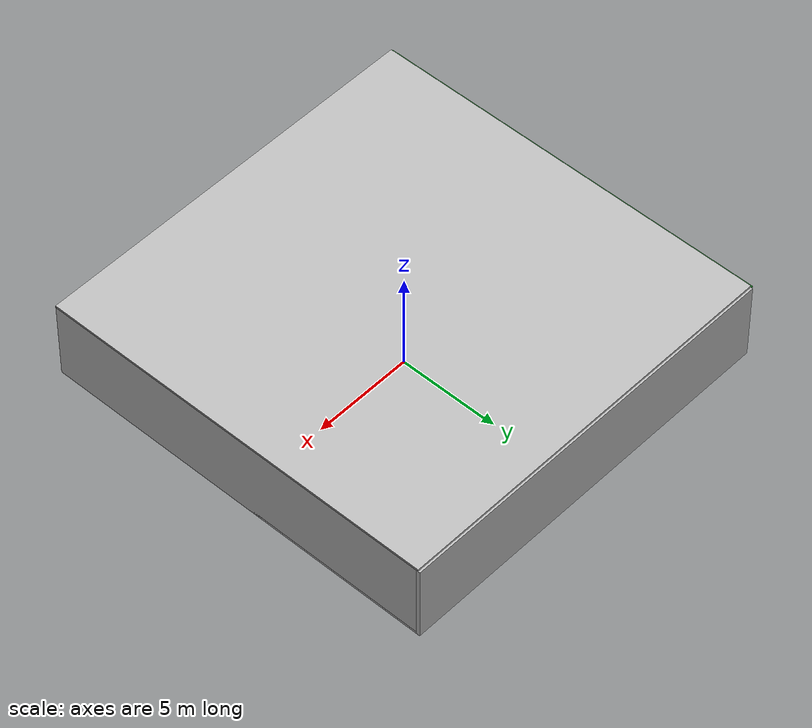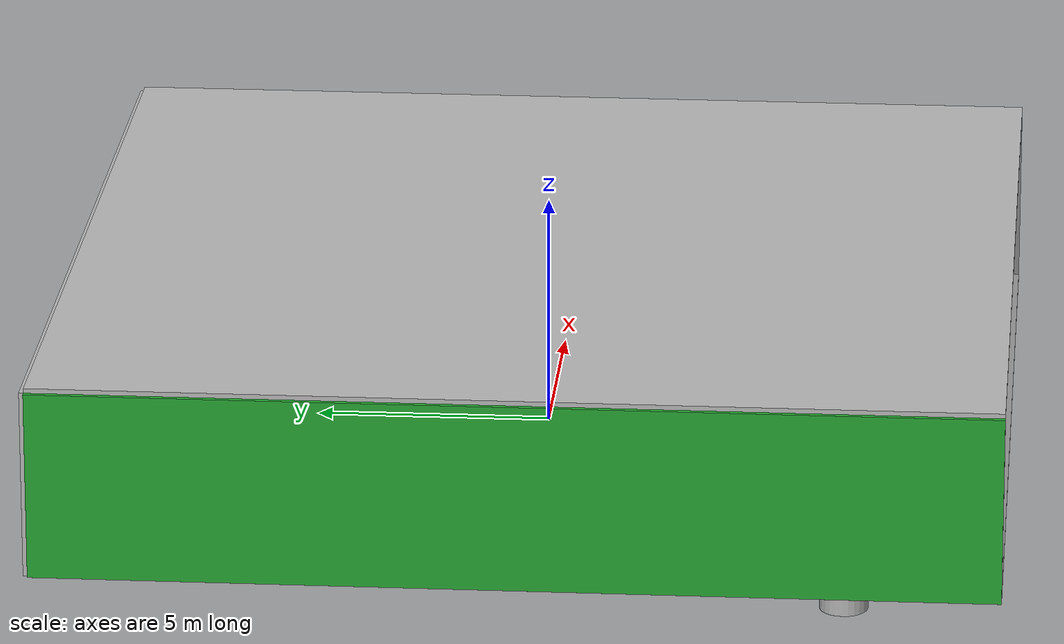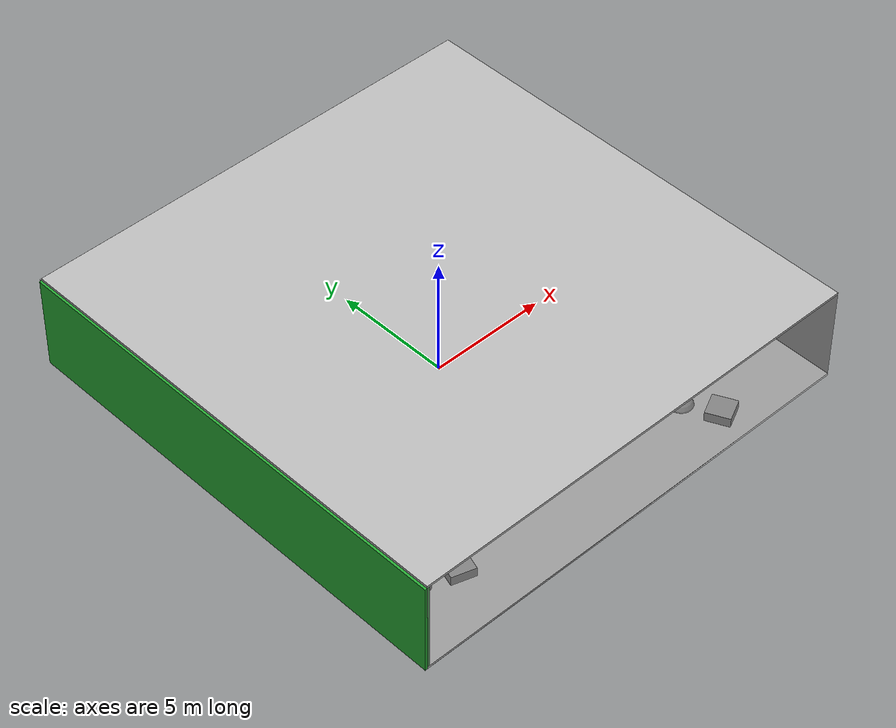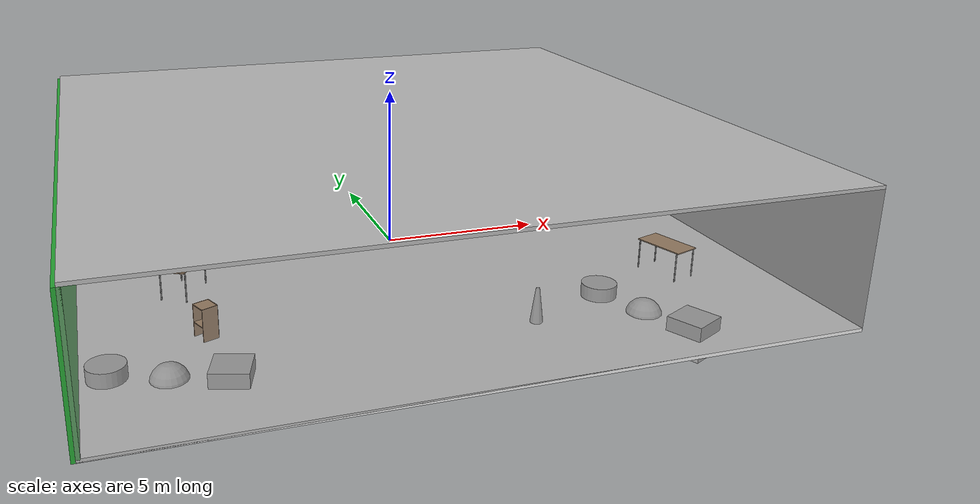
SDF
<sdf version="1.4">
 <world name="default">
  <physics type="ode">
   <max_step_size>0.001</max_step_size>
   <real_time_factor>1</real_time_factor>
   <real_time_update_rate>1000</real_time_update_rate>
   <gravity>0 0 -9.8</gravity>
  </physics>
  <scene><ambient>0.4 0.4 0.4 1</ambient><background>0.7 0.7 0.7 1</background><shadows>1</shadows></scene>
  <model name="Surrounding">
   <static>1</static>
   <link name="Ceiling">
    <collision name="Ceiling_Collision"><geometry><box><size>20 20 0.1</size></box></geometry></collision>
    <visual name="Ceiling_Visual">
     <geometry><box><size>20 20 0.1</size></box></geometry>
     <material>
      <script><uri>file://media/materials/scripts/gazebo.material</uri><name>Gazebo/CloudySky</name></script>
     </material>
    </visual>
    <pose>0 0 4.05 0 0 0</pose>
   </link>
   <link name="Wall_South">
    <collision name="Wall_South_Collision">
     <geometry><box><size>20 0 4</size></box></geometry>
     <pose>0 0 2 0 -0 0</pose>
    </collision>
    <visual name="Wall_South_Visual">
     <pose>0 0 2 0 -0 0</pose>
     <geometry><box><size>20 0 4</size></box></geometry>
     <material>
      <script><uri>file://media/materials/scripts/gazebo.material</uri><name>Gazebo/GreyTransparent</name></script>
     </material>
    </visual>
    <velocity_decay><linear>0</linear><angular>0</angular></velocity_decay>
    <pose>0 -10 0 0 -0 0</pose>
   </link>
   <link name="Wall_East">
    <collision name="Wall_21_Collision">
     <geometry><box><size>20 0 4</size></box></geometry>
     <pose>0 0 2 0 -0 0</pose>
    </collision>
    <visual name="Wall_21_Visual">
     <pose>0 0 2 0 -0 0</pose>
     <geometry><box><size>20 0 4</size></box></geometry>
     <material>
      <script><uri>file://media/materials/scripts/gazebo.material</uri><name>Gazebo/LightOn</name></script>
     </material>
    </visual>
    <velocity_decay><linear>0</linear><angular>0</angular></velocity_decay>
    <pose>10 0 0 0 -0 1.5708</pose>
   </link>
   <link name="Wall_North">
    <collision name="Wall_22_Collision">
     <geometry><box><size>20 0.2 4</size></box></geometry>
     <pose>0 0 2 0 -0 0</pose>
    </collision>
    <visual name="Wall_22_Visual">
     <pose>0 0 2 0 -0 0</pose>
     <geometry><box><size>20 0.2 4</size></box></geometry>
     <material>
      <script><uri>file://media/materials/scripts/gazebo.material</uri><name>Gazebo/CloudySky</name></script>
     </material>
    </visual>
    <velocity_decay><linear>0</linear><angular>0</angular></velocity_decay>
    <pose>0 10 0 0 -0 0</pose>
   </link>
   <link name="Wall_West">
    <collision name="Wall_23_Collision">
     <geometry><box><size>20 0.2 4</size></box></geometry>
     <pose>0 0 2 0 -0 0</pose>
    </collision>
    <visual name="Wall_23_Visual">
     <pose>0 0 2 0 -0 0</pose>
     <geometry><box><size>20 0.2 4</size></box></geometry>
     <material>
      <script><uri>file://media/materials/scripts/gazebo.material</uri><name>Gazebo/Green</name></script>
     </material>
    </visual>
    <velocity_decay><linear>0</linear><angular>0</angular></velocity_decay>
    <pose>-10 0 0 0 0 -1.5708</pose>
   </link>
   <link name="Ground_link">
    <collision name="collision">
     <pose>0 0 .05 0 -0 0</pose>
     <geometry><box><size>20 20 0.1</size></box></geometry>
    </collision>
    <visual name="visual">
     <pose>0 0 .05 0 -0 0</pose>
     <geometry><box><size>20 20 0.1</size></box></geometry>
     <material>
      <script><uri>file://media/materials/scripts/gazebo.material</uri><name>Gazebo/WhiteGlow</name></script>
     </material>
    </visual>
   </link>
   <static>1</static>
  </model>
  <spherical_coordinates>
   <surface_model>EARTH_WGS84</surface_model>
   <latitude_deg>0</latitude_deg>
   <longitude_deg>0</longitude_deg>
   <elevation>0</elevation>
   <heading_deg>0</heading_deg>
  </spherical_coordinates>
  <light name="lightball_0" type="diffuse">
   <diffuse>0.8 0.8 0.8 1</diffuse>
   <specular>0.2 0.2 0.2 1</specular>
   <attenuation>
    <range>100</range>
    <constant>0.7</constant>
    <linear>0.01</linear>
    <quadratic>0.001</quadratic>
   </attenuation>
   <direction>-0.5 0.1 -0.9</direction>
   <pose>-4.15965389641 4.90394560641 3.1713730836 0 0 0</pose>
  </light>
  <light name="lightball_1" type="diffuse">
   <diffuse>0.8 0.8 0.8 1</diffuse>
   <specular>0.2 0.2 0.2 1</specular>
   <attenuation>
    <range>100</range>
    <constant>0.7</constant>
    <linear>0.01</linear>
    <quadratic>0.001</quadratic>
   </attenuation>
   <direction>-0.5 0.1 -0.9</direction>
   <pose>8.76057171822 -4.93679237394 0.556868169343 0 0 0</pose>
  </light>
  <light name="lightball_2" type="diffuse">
   <diffuse>0.8 0.8 0.8 1</diffuse>
   <specular>0.2 0.2 0.2 1</specular>
   <attenuation>
    <range>100</range>
    <constant>0.7</constant>
    <linear>0.01</linear>
    <quadratic>0.001</quadratic>
   </attenuation>
   <direction>-0.5 0.1 -0.9</direction>
   <pose>-6.00539818969 -0.36622321256 1.60078208445 0 0 0</pose>
  </light>
  <light name="lightball_3" type="diffuse">
   <diffuse>0.8 0.8 0.8 1</diffuse>
   <specular>0.2 0.2 0.2 1</specular>
   <attenuation>
    <range>100</range>
    <constant>0.7</constant>
    <linear>0.01</linear>
    <quadratic>0.001</quadratic>
   </attenuation>
   <direction>-0.5 0.1 -0.9</direction>
   <pose>9.28358902022 1.38269042491 0.984872117647 0 0 0</pose>
  </light>
  <light name="lightball_4" type="diffuse">
   <diffuse>0.8 0.8 0.8 1</diffuse>
   <specular>0.2 0.2 0.2 1</specular>
   <attenuation>
    <range>100</range>
    <constant>0.7</constant>
    <linear>0.01</linear>
    <quadratic>0.001</quadratic>
   </attenuation>
   <direction>-0.5 0.1 -0.9</direction>
   <pose>-5.01966783109 1.87357943119 0.952028916048 0 0 0</pose>
  </light>
  <light name="lightball_5" type="diffuse">
   <diffuse>0.8 0.8 0.8 1</diffuse>
   <specular>0.2 0.2 0.2 1</specular>
   <attenuation>
    <range>100</range>
    <constant>0.7</constant>
    <linear>0.01</linear>
    <quadratic>0.001</quadratic>
   </attenuation>
   <direction>-0.5 0.1 -0.9</direction>
   <pose>-7.50471697387 3.6685114202 3.13317538407 0 0 0</pose>
  </light>
  <include>
   <uri>model://textured_shapes</uri>
   <pose>-7.8094748655 -7.19579209764 0 0 0 1.27442405172</pose>
  </include>
  <include><uri>model://cabinet</uri><pose>-6.67894932946 -5.28611733448 0 0 0 0.397450792426</pose></include>
  <include><uri>model://table</uri><pose>-6.93214983827 -2.24933840748 0 0 0 1.04418493623</pose></include>
  <include>
   <uri>model://robocup_3Dsim_goal</uri>
   <pose>-4.97766620101 1.22511451994 0 0 0 0.845265833645</pose>
  </include>
  <include><uri>model://table</uri><pose>-0.970947940107 1.86597177845 0 0 0 2.95307967306</pose></include>
  <include>
   <uri>model://textured_shapes</uri>
   <pose>-1.5543253673 5.64765196087 0 0 0 2.60027594186</pose>
  </include>
  <include>
   <uri>model://construction_cone</uri>
   <pose>1.90911713579 -7.03968266761 0 0 0 1.09564736254</pose>
  </include>
  <include>
   <uri>model://textured_shapes</uri>
   <pose>4.9784648139 -7.40052625314 0 0 0 0.451930403073</pose>
  </include>
  <include><uri>model://table</uri><pose>7.06884557382 -5.11988627178 0 0 0 1.88602784274</pose></include>
  <include>
   <uri>model://robocup_3Dsim_goal</uri>
   <pose>7.31791706066 3.39414340413 0 0 0 1.80906214731</pose>
  </include>
 </world>
</sdf>

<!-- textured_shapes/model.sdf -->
<sdf version="1.6">
  <model name="textured_shapes">
    <pose>0 0 0.5 0 0 0</pose>
    <link name="box">
      <pose>0 -1.5 0 0 0 0</pose>
      <collision name="collision">
        <geometry>
          <box>
            <size>1 1 1</size>
          </box>
        </geometry>
      </collision>
      <visual name="visual">
        <geometry>
          <box>
            <size>1 1 1</size>
          </box>
        </geometry>
        <material>
          <script>
            <uri>model://../model_source/models/textured_shapes/materials/scripts</uri>
            <uri>model://../model_source/models/textured_shapes/materials/textures</uri>
            <name>TexturedShape/Squares</name>
          </script>
        </material>
      </visual>
    </link>
    <link name="sphere">
      <collision name="collision">
        <geometry>
          <sphere>
            <radius>0.5</radius>
          </sphere>
        </geometry>
      </collision>
      <visual name="visual">
        <geometry>
          <sphere>
            <radius>0.5</radius>
          </sphere>
        </geometry>
        <material>
          <script>
            <uri>model://../model_source/models/textured_shapes/materials/scripts</uri>
            <uri>model://../model_source/models/textured_shapes/materials/textures</uri>
            <name>TexturedShape/Squares</name>
          </script>
        </material>
      </visual>
    </link>
    <link name="cylinder">
      <pose>0 1.5 0 0 0 0</pose>
      <collision name="collision">
        <geometry>
          <cylinder>
            <radius>0.5</radius>
            <length>1</length>
          </cylinder>
        </geometry>
      </collision>
      <visual name="visual">
        <geometry>
          <cylinder>
            <radius>0.5</radius>
            <length>1</length>
          </cylinder>
        </geometry>
        <material>
          <script>
            <uri>model://../model_source/models/textured_shapes/materials/scripts</uri>
            <uri>model://../model_source/models/textured_shapes/materials/textures</uri>
            <name>TexturedShape/Squares</name>
          </script>
        </material>
      </visual>
    </link>
  </model>
</sdf>

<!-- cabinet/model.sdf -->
<sdf version="1.5">
  <model name="cabinet">
    <static>true</static>
    <link name="cabinet_bottom_plate">
      <inertial>
        <pose>0 0 -1 0 0 0</pose>
        <inertia>
          <ixx>2.050000</ixx>
          <ixy>0</ixy>
          <ixz>0</ixz>
          <iyy>2.050000</iyy>
          <iyz>0</iyz>
          <izz>2.050000</izz>
        </inertia>
        <mass>25.000000</mass>
      </inertial>
      <collision name="cabinet_bottom_plate_geom">
        <pose>0 0 0.010000 0 0 0</pose>
        <geometry>
          <box>
            <size>0.450000 0.450000 0.020000</size>
          </box>
        </geometry>
      </collision>
      <visual name="cabinet_bottom_plate_geom_visual">
        <pose>0 0 0.010000 0 0 0</pose>
        <geometry>
          <box>
            <size>0.450000 0.450000 0.020000</size>
          </box>
        </geometry>
        <material>
          <script>
            <uri>model://media/materials/scripts/gazebo.material</uri>
            <name>Gazebo/Wood</name>
          </script>
        </material>
      </visual>
      <collision name="cabinet_bottom_plate_geom_cabinet_back_plate">
        <pose>0.235000 0 0.510000 0 0 0</pose>
        <geometry>
          <box>
            <size>0.020000 0.450000 1.020000</size>
          </box>
        </geometry>
      </collision>
      <visual name="cabinet_bottom_plate_geom_cabinet_back_plate_visual">
        <pose>0.235000 0 0.510000 0 0 0</pose>
        <geometry>
          <box>
            <size>0.020000 0.450000 1.020000</size>
          </box>
        </geometry>
        <material>
          <script>
            <uri>model://media/materials/scripts/gazebo.material</uri>
            <name>Gazebo/Wood</name>
          </script>
        </material>
      </visual>
      <collision name="cabinet_bottom_plate_geom_cabinet_left_plate">
        <pose>0 0.235000 0.510000 0 0 0</pose>
        <geometry>
          <box>
            <size>0.450000 0.020000 1.020000</size>
          </box>
        </geometry>
      </collision>
      <visual name="cabinet_bottom_plate_geom_cabinet_left_plate_visual">
        <pose>0 0.235000 0.510000 0 0 0</pose>
        <geometry>
          <box>
            <size>0.450000 0.020000 1.020000</size>
          </box>
        </geometry>
        <material>
          <script>
            <uri>model://media/materials/scripts/gazebo.material</uri>
            <name>Gazebo/Wood</name>
          </script>
        </material>
      </visual>
      <collision name="cabinet_bottom_plate_geom_cabinet_middle_plate">
        <pose>0 0 0.510000 0 0 0</pose>
        <geometry>
          <box>
            <size>0.450000 0.450000 0.020000</size>
          </box>
        </geometry>
      </collision>
      <visual name="cabinet_bottom_plate_geom_cabinet_middle_plate_visual">
        <pose>0 0 0.510000 0 0 0</pose>
        <geometry>
          <box>
            <size>0.450000 0.450000 0.020000</size>
          </box>
        </geometry>
        <material>
          <script>
            <uri>model://media/materials/scripts/gazebo.material</uri>
            <name>Gazebo/Wood</name>
          </script>
        </material>
      </visual>
      <collision name="cabinet_bottom_plate_geom_cabinet_right_plate">
        <pose>0 -0.235000 0.510000 0 0 0</pose>
        <geometry>
          <box>
            <size>0.450000 0.020000 1.020000</size>
          </box>
        </geometry>
      </collision>
      <visual name="cabinet_bottom_plate_geom_cabinet_right_plate_visual">
        <pose>0 -0.235000 0.510000 0 0 0</pose>
        <geometry>
          <box>
            <size>0.450000 0.020000 1.020000</size>
          </box>
        </geometry>
        <material>
          <script>
            <uri>model://media/materials/scripts/gazebo.material</uri>
            <name>Gazebo/Wood</name>
          </script>
        </material>
      </visual>
      <collision name="cabinet_bottom_plate_geom_cabinet_top_plate">
        <pose>0 0 1.010000 0 0 0</pose>
        <geometry>
          <box>
            <size>0.450000 0.450000 0.020000</size>
          </box>
        </geometry>
      </collision>
      <visual name="cabinet_bottom_plate_geom_cabinet_top_plate_visual">
        <pose>0 0 1.010000 0 0 0</pose>
        <geometry>
          <box>
            <size>0.450000 0.450000 0.020000</size>
          </box>
        </geometry>
        <material>
          <script>
            <uri>model://media/materials/scripts/gazebo.material</uri>
            <name>Gazebo/Wood</name>
          </script>
        </material>
      </visual>
    </link>
  </model>
</sdf>

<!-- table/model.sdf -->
<sdf version="1.5">
  <model name="table">
    <static>true</static>
    <link name="link">
      <collision name="surface">
        <pose>0 0 1.0 0 0 0</pose>
        <geometry>
          <box>
            <size>1.5 0.8 0.03</size>
          </box>
        </geometry>
        <surface>
          <friction>
            <ode>
              <mu>0.6</mu>
              <mu2>0.6</mu2>
            </ode>
          </friction>
        </surface>
      </collision>
      <visual name="visual1">
        <pose>0 0 1.0 0 0 0</pose>
        <geometry>
          <box>
            <size>1.5 0.8 0.03</size>
          </box>
        </geometry>
        <material>
          <script>
            <uri>model://media/materials/scripts/gazebo.material</uri>
            <name>Gazebo/Wood</name>
          </script>
        </material>
      </visual>
      <collision name="front_left_leg">
        <pose>0.68 0.38 0.5 0 0 0</pose>
        <geometry>
          <cylinder>
            <radius>0.02</radius>
            <length>1.0</length>
          </cylinder>
        </geometry>
      </collision>
      <visual name="front_left_leg">
        <pose>0.68 0.38 0.5 0 0 0</pose>
        <geometry>
          <cylinder>
            <radius>0.02</radius>
            <length>1.0</length>
          </cylinder>
        </geometry>
        <material>
          <script>
            <uri>model://media/materials/scripts/gazebo.material</uri>
            <name>Gazebo/Grey</name>
          </script>
        </material>
      </visual>
      <collision name="front_right_leg">
        <pose>0.68 -0.38 0.5 0 0 0</pose>
        <geometry>
          <cylinder>
            <radius>0.02</radius>
            <length>1.0</length>
          </cylinder>
        </geometry>
      </collision>
      <visual name="front_right_leg">
        <pose>0.68 -0.38 0.5 0 0 0</pose>
        <geometry>
          <cylinder>
            <radius>0.02</radius>
            <length>1.0</length>
          </cylinder>
        </geometry>
        <material>
          <script>
            <uri>model://media/materials/scripts/gazebo.material</uri>
            <name>Gazebo/Grey</name>
          </script>
        </material>
      </visual>
      <collision name="back_right_leg">
        <pose>-0.68 -0.38 0.5 0 0 0</pose>
        <geometry>
          <cylinder>
            <radius>0.02</radius>
            <length>1.0</length>
          </cylinder>
        </geometry>
      </collision>
      <visual name="back_right_leg">
        <pose>-0.68 -0.38 0.5 0 0 0</pose>
        <geometry>
          <cylinder>
            <radius>0.02</radius>
            <length>1.0</length>
          </cylinder>
        </geometry>
        <material>
          <script>
            <uri>model://media/materials/scripts/gazebo.material</uri>
            <name>Gazebo/Grey</name>
          </script>
        </material>
      </visual>
      <collision name="back_left_leg">
        <pose>-0.68 0.38 0.5 0 0 0</pose>
        <geometry>
          <cylinder>
            <radius>0.02</radius>
            <length>1.0</length>
          </cylinder>
        </geometry>
      </collision>
      <visual name="back_left_leg">
        <pose>-0.68 0.38 0.5 0 0 0</pose>
        <geometry>
          <cylinder>
            <radius>0.02</radius>
            <length>1.0</length>
          </cylinder>
        </geometry>
        <material>
          <script>
            <uri>model://media/materials/scripts/gazebo.material</uri>
            <name>Gazebo/Grey</name>
          </script>
        </material>
      </visual>
    </link>
  </model>
</sdf>

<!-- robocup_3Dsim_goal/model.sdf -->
<sdf version="1.5">
  <model name="robocup_3d_goal">
    <static>true</static>
    <link name="left_post">
      <pose>0 1.05 0.45 0 0 0</pose>
      <collision name="collision">
        <geometry>
          <cylinder>
            <radius>0.05</radius>
            <length>0.9</length>
          </cylinder>
        </geometry>
      </collision>
      <visual name="visual">
        <geometry>
          <cylinder>
            <radius>0.05</radius>
            <length>0.9</length>
          </cylinder>
        </geometry>
        <material>
          <script>
            <uri>file://media/materials/scripts/gazebo.material</uri>
            <name>Gazebo/ZincYellow</name>
          </script>
        </material>
      </visual>
    </link>
    <link name="left_support_horiz_lower">
      <pose>0.30 1.05 0.01 0 0 0</pose>
      <collision name="collision">
        <geometry>
          <box>
            <size>0.50 0.02 0.02</size>
          </box>
        </geometry>
      </collision>
      <visual name="visual">
        <geometry>
          <box>
            <size>0.50 0.02 0.02</size>
          </box>
        </geometry>
        <material>
          <script>
            <uri>file://media/materials/scripts/gazebo.material</uri>
            <name>Gazebo/White</name>
          </script>
        </material>
      </visual>
    </link>
    <link name="left_support_horiz_upper">
      <pose>0.30 1.05 0.79 0 0 0</pose>
      <collision name="collision">
        <geometry>
          <box>
            <size>0.50 0.02 0.02</size>
          </box>
        </geometry>
      </collision>
      <visual name="visual">
        <geometry>
          <box>
            <size>0.50 0.02 0.02</size>
          </box>
        </geometry>
        <material>
          <script>
            <uri>file://media/materials/scripts/gazebo.material</uri>
            <name>Gazebo/White</name>
          </script>
        </material>
      </visual>
    </link>
    <link name="left_support_vertical">
      <pose>0.56 1.05 0.4 0 1.5708 0</pose>
      <collision name="collision">
        <geometry>
          <box>
            <size>0.80 0.02 0.02</size>
          </box>
        </geometry>
      </collision>
      <visual name="visual">
        <geometry>
          <box>
            <size>0.80 0.02 0.02</size>
          </box>
        </geometry>
        <material>
          <script>
            <uri>file://media/materials/scripts/gazebo.material</uri>
            <name>Gazebo/White</name>
          </script>
        </material>
      </visual>
    </link>
    <link name="right_support_horiz_lower">
      <pose>0.30 -1.05 0.01 0 0 0</pose>
      <collision name="collision">
        <geometry>
          <box>
            <size>0.50 0.02 0.02</size>
          </box>
        </geometry>
      </collision>
      <visual name="visual">
        <geometry>
          <box>
            <size>0.50 0.02 0.02</size>
          </box>
        </geometry>
        <material>
          <script>
            <uri>file://media/materials/scripts/gazebo.material</uri>
            <name>Gazebo/White</name>
          </script>
        </material>
      </visual>
    </link>
    <link name="right_support_horiz_upper">
      <pose>0.30 -1.05 0.79 0 0 0</pose>
      <collision name="collision">
        <geometry>
          <box>
            <size>0.50 0.02 0.02</size>
          </box>
        </geometry>
      </collision>
      <visual name="visual">
        <geometry>
          <box>
            <size>0.50 0.02 0.02</size>
          </box>
        </geometry>
        <material>
          <script>
            <uri>file://media/materials/scripts/gazebo.material</uri>
            <name>Gazebo/White</name>
          </script>
        </material>
      </visual>
    </link>
    <link name="right_support_vertical">
      <pose>0.56 -1.05 0.4 0 1.5708 0</pose>
      <collision name="collision">
        <geometry>
          <box>
            <size>0.80 0.02 0.02</size>
          </box>
        </geometry>
      </collision>
      <visual name="visual">
        <geometry>
          <box>
            <size>0.80 0.02 0.02</size>
          </box>
        </geometry>
        <material>
          <script>
            <uri>file://media/materials/scripts/gazebo.material</uri>
            <name>Gazebo/White</name>
          </script>
        </material>
      </visual>
    </link>
    <link name="center_support_horiz_lower">
      <pose>0.56 0 0.01 0 1.5708 0</pose>
      <collision name="collision">
        <geometry>
          <box>
            <size>0.02 2.08 0.02</size>
          </box>
        </geometry>
      </collision>
      <visual name="visual">
        <geometry>
          <box>
            <size>0.02 2.08 0.02</size>
          </box>
        </geometry>
        <material>
          <script>
            <uri>file://media/materials/scripts/gazebo.material</uri>
            <name>Gazebo/White</name>
          </script>
        </material>
      </visual>
    </link>
    <link name="center_support_horiz_upper">
      <pose>0.56 0 0.79 0 1.5708 0</pose>
      <collision name="collision">
        <geometry>
          <box>
            <size>0.02 2.08 0.02</size>
          </box>
        </geometry>
      </collision>
      <visual name="visual">
        <geometry>
          <box>
            <size>0.02 2.08 0.02</size>
          </box>
        </geometry>
        <material>
          <script>
            <uri>file://media/materials/scripts/gazebo.material</uri>
            <name>Gazebo/White</name>
          </script>
        </material>
      </visual>
    </link>
    <link name="right_post">
      <pose>0 -1.05 0.45 0 0 0</pose>
      <collision name="collision">
        <geometry>
          <cylinder>
            <radius>0.05</radius>
            <length>0.9</length>
          </cylinder>
        </geometry>
      </collision>
      <visual name="visual">
        <geometry>
          <cylinder>
            <radius>0.05</radius>
            <length>0.9</length>
          </cylinder>
        </geometry>
        <material>
          <script>
            <uri>file://media/materials/scripts/gazebo.material</uri>
            <name>Gazebo/ZincYellow</name>
          </script>
        </material>
      </visual>
    </link>
    <link name="crossbar">
      <pose>0 0 0.85 1.57 1.57 0</pose>
      <collision name="collision">
        <geometry>
          <cylinder>
            <radius>0.05</radius>
            <length>2.0</length>
          </cylinder>
        </geometry>
      </collision>
      <visual name="visual">
        <geometry>
          <cylinder>
            <radius>0.05</radius>
            <length>2.0</length>
          </cylinder>
        </geometry>
        <material>
          <script>
            <uri>file://media/materials/scripts/gazebo.material</uri>
            <name>Gazebo/ZincYellow</name>
          </script>
        </material>
      </visual>
    </link>
    <link name="center_net">
      <pose>0.56 0 0.40 0 0 0</pose>
      <collision name="collision">
        <geometry>
          <box>
            <size>0.01 2.1 0.80</size>
          </box>
        </geometry>
      </collision>
      <visual name="visual">
        <geometry>
          <box>
            <size>0.01 2.1 0.80</size>
          </box>
        </geometry>
        <material>
          <script>
            <uri>model://../model_source/models/robocup09_spl_field/materials/scripts/</uri>
            <uri>model://../model_source/models/robocup09_spl_field/materials/textures/</uri>
            <name>RoboCup/Net</name>
          </script>
        </material>
      </visual>
    </link>
    <link name="left_net">
      <pose>0.30 1.05 0.40 0 0 0</pose>
      <collision name="collision">
        <geometry>
          <box>
            <size>0.50 0.01 0.76</size>
          </box>
        </geometry>
      </collision>
      <visual name="visual">
        <geometry>
          <box>
            <size>0.50 0.01 0.76</size>
          </box>
        </geometry>
        <material>
          <script>
            <uri>model://../model_source/models/robocup09_spl_field/materials/scripts/</uri>
            <uri>model://../model_source/models/robocup09_spl_field/materials/textures/</uri>
            <name>RoboCup/Net</name>
          </script>
        </material>
      </visual>
    </link>
    <link name="right_net">
      <pose>0.30 -1.05 0.40 0 0 0</pose>
      <collision name="collision">
        <geometry>
          <box>
            <size>0.50 0.01 0.76</size>
          </box>
        </geometry>
      </collision>
      <visual name="visual">
        <geometry>
          <box>
            <size>0.50 0.01 0.76</size>
          </box>
        </geometry>
        <material>
          <script>
            <uri>model://../model_source/models/robocup09_spl_field/materials/scripts/</uri>
            <uri>model://../model_source/models/robocup09_spl_field/materials/textures/</uri>
            <name>RoboCup/Net</name>
          </script>
        </material>
      </visual>
    </link>
  </model>
</sdf>

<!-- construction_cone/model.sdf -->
<sdf version="1.5">
  <model name="Construction Cone">
    <link name="link">
      <collision name="collision">
        <geometry>
          <mesh>
            <scale>10 10 10</scale>
            <uri>file://isr-testbed/construction_cone/meshes/construction_cone.dae</uri>
          </mesh>
        </geometry>
      </collision>
      <visual name="visual">
        <geometry>
          <mesh>
            <scale>10 10 10</scale>
            <uri>file://isr-testbed/construction_cone/meshes/construction_cone.dae</uri>
          </mesh>
        </geometry>
      </visual>
    </link>
  </model>
</sdf>
